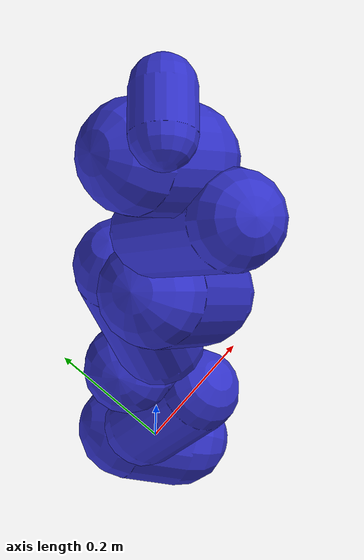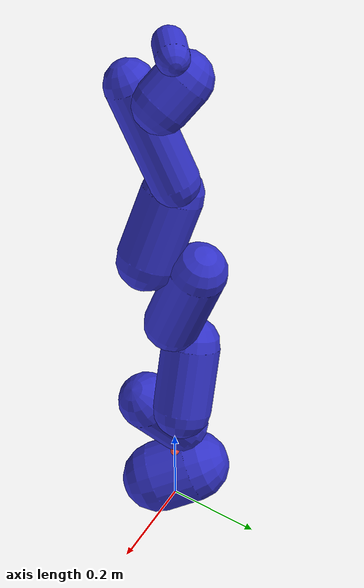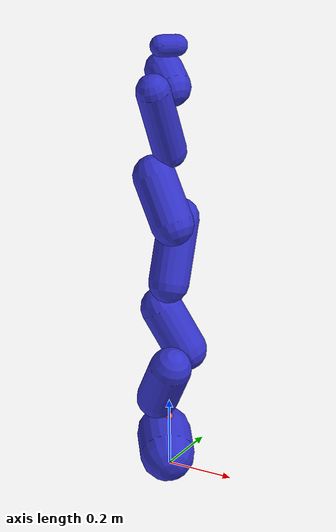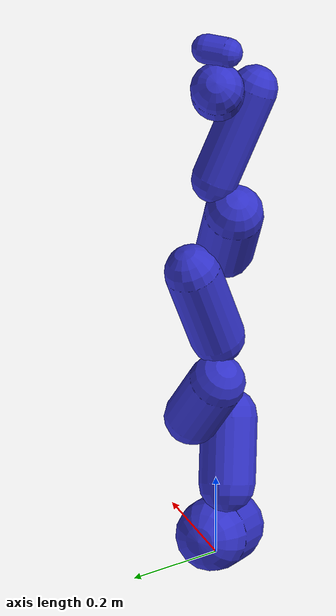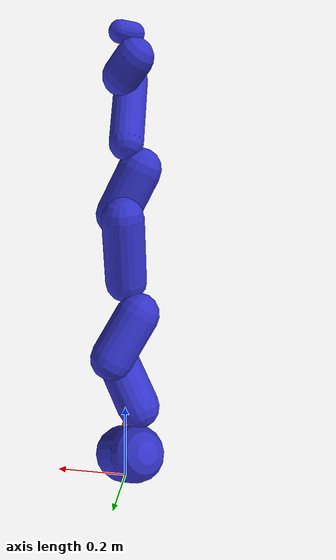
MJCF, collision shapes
<mujoco model="iiwa7">
  <compiler angle="radian"/>
  <actuator>
    <motor ctrllimited="true" ctrlrange="-176.0 176.0" joint="joint_1" name="torq_j1"/>
    <motor ctrllimited="true" ctrlrange="-176.0 176.0" joint="joint_2" name="torq_j2"/>
    <motor ctrllimited="true" ctrlrange="-110.0 110.0" joint="joint_3" name="torq_j3"/>
    <motor ctrllimited="true" ctrlrange="-110.0 110.0" joint="joint_4" name="torq_j4"/>
    <motor ctrllimited="true" ctrlrange="-110.0 110.0" joint="joint_5" name="torq_j5"/>
    <motor ctrllimited="true" ctrlrange="-40.0 40.0" joint="joint_6" name="torq_j6"/>
    <motor ctrllimited="true" ctrlrange="-40.0 40.0" joint="joint_7" name="torq_j7"/>
  </actuator>
  <asset>
    <mesh name="link_0" file="meshes/link_0.stl"/>
    <mesh name="link_1" file="meshes/link_1.stl"/>
    <mesh name="link_2" file="meshes/link_2.stl"/>
    <mesh name="link_3" file="meshes/link_3.stl"/>
    <mesh name="link_4" file="meshes/link_4.stl"/>
    <mesh name="link_5" file="meshes/link_5.stl"/>
    <mesh name="link_6" file="meshes/link_6.stl"/>
    <mesh name="link_7" file="meshes/link_7.stl"/>
    <mesh name="link_0_vis" file="meshes/link_0_vis.stl"/>
    <mesh name="link_1_vis" file="meshes/link_1_vis.stl"/>
    <mesh name="link_2_vis" file="meshes/link_2_vis.stl"/>
    <mesh name="link_3_vis" file="meshes/link_3_vis.stl"/>
    <mesh name="link_4_vis" file="meshes/link_4_vis.stl"/>
    <mesh name="link_5_vis" file="meshes/link_5_vis.stl"/>
    <mesh name="link_6_vis" file="meshes/link_6_vis.stl"/>
    <mesh name="link_7_vis" file="meshes/link_7_vis.stl"/>
  </asset>
  <worldbody>
    <body name="base" pos="0 0 0">
      <camera mode="fixed" name="robotview" pos="1.0 0 0.4" quat="0.653 0.271 0.271 0.653"/>
      <inertial diaginertia="0 0 0" mass="0" pos="0 0 0"/>
      <body name="fixed_base_link" pos="0 0 0">
        <geom type="mesh" pos="0 0 0" contype="0" conaffinity="0" group="1" rgba="0.4 0.4 0.4 1" name="link_0_visual" mesh="link_0_vis"/>
        <geom type="capsule" pos="-0.010520 -0.004486 0.063368" rgba="0.2 0.2 0.8 0.5" contype="0" name="link_0_collision" quat="0.559924 0.663001 0.496905 0.000000" size="0.079501 0.042908"/>
        <body name="link_1" pos="0 0 0.15">
          <site name="right_center" pos="0 0 0" size="0.01" rgba="1 0.3 0.3 1" group="2"/>
          <inertial pos="0 -0.03 0.12" quat="0.428904 0.562175 -0.562175 0.428904" mass="3.4525" diaginertia="0.0218946 0.02183 0.00663837"/>
          <joint name="joint_1" pos="0 0 0" axis="0 0 1" limited="true" range="-2.96706 2.96706" damping="0.1"/>
          <geom pos="0 0 0.0075" type="mesh" contype="0" conaffinity="0" group="1" rgba="0.4 0.4 0.4 1" name="link_1_visual" mesh="link_1_vis"/>
          <geom pos="-0.002046 -0.028049 0.114487" type="capsule" contype="0" rgba="0.2 0.2 0.8 0.5" name="link_1_collision" quat="0.958243 0.149873 0.243531 0.000000" size="0.061216 0.072161"/>
          <body name="link_2" pos="0 0 0.19" quat="0 0 0.707107 0.707107">
            <inertial pos="0.0003 0.059 0.042" quat="0.701371 0.0898824 0.0898824 0.701371" mass="3.4821" diaginertia="0.02179 0.0217049 0.00684512"/>
            <joint name="joint_2" pos="0 0 0" axis="0 0 1" limited="true" range="-2.0944 2.0944" damping="0.1"/>
            <geom type="mesh" contype="0" conaffinity="0" group="1" rgba="1 0.423529 0.0392157 1" name="link_2_visual" mesh="link_2_vis"/>
            <geom type="capsule" contype="0" rgba="0.2 0.2 0.8 0.5" name="link_2_collision" pos="0.001875 0.074216 0.028971" quat="0.756117 0.570673 -0.320344 0.000000" size="0.060906 0.071430"/>
            <body name="link_3" pos="0 0.21 0" quat="0 0 0.707107 0.707107">
              <inertial pos="0 0.03 0.13" quat="0.56292 0.427927 -0.427927 0.56292" mass="4.05623" diaginertia="0.0321488 0.03204 0.00799117"/>
              <joint name="joint_3" pos="0 0 0" axis="0 0 1" limited="true" range="-2.96706 2.96706" damping="0.1"/>
              <geom pos="0 0 -0.026" type="mesh" contype="0" conaffinity="0" group="1" rgba="0.4 0.4 0.4 1" name="link_3_visual" mesh="link_3_vis"/>
              <geom pos="-0.000003 0.026818 0.101911" type="capsule" contype="0" rgba="0.2 0.2 0.8 0.5" name="link_3_collision" quat="0.987171 -0.159663 -0.000418 0.000000" size="0.058469 0.092809"/>
              <body name="link_4" pos="0 0 0.19" quat="0.707107 0.707107 0 0">
                <inertial pos="0 0.067 0.034" quat="0.991887 -0.127124 0 0" mass="3.4822" diaginertia="0.02178 0.0216947 0.00684029"/>
                <joint name="joint_4" pos="0 0 0" axis="0 0 1" limited="true" range="-2.0944 2.0944" damping="0.1"/>
                <geom type="mesh" contype="0" conaffinity="0" group="1" rgba="1 0.423529 0.0392157 1" name="link_4_visual" mesh="link_4_vis"/>
                <geom type="capsule" contype="0" rgba="0.2 0.2 0.8 0.5" name="link_4_collision" pos="-0.001356 0.073448 0.029190" quat="0.665322 -0.659204 -0.350425 0.000000" size="0.061157 0.071151"/>
                <body name="link_5" pos="0 0.21 0" quat="0 0 0.707107 0.707107">
                  <inertial pos="0.0001 0.021 0.076" quat="0.365352 0.605407 -0.605407 0.365352" mass="2.1633" diaginertia="0.0131987 0.01287 0.0036293"/>
                  <joint name="joint_5" pos="0 0 0" axis="0 0 1" limited="true" range="-2.96706 2.96706" damping="0.1"/>
                  <geom pos="0 0 -0.026" type="mesh" contype="0" conaffinity="0" group="1" rgba="0.4 0.4 0.4 1" name="link_5_visual" mesh="link_5_vis"/>
                  <geom pos="-0.000141 0.040086 0.089159" type="capsule" contype="0" rgba="0.2 0.2 0.8 0.5" name="link_5_collision" quat="0.225219 0.974216 0.013405 0.000000" size="0.048054 0.102854"/>
                  <body name="link_6" pos="0 0.0607 0.19" quat="0.707107 0.707107 0 0">
                    <inertial pos="0 0.0006 0.0004" quat="0.996112 0.088097 0 0" mass="2.3466" diaginertia="0.006509 0.00631585 0.00447015"/>
                    <joint name="joint_6" pos="0 0 0" axis="0 0 1" limited="true" range="-2.0944 2.0944" damping="0.1"/>
                    <geom type="mesh" contype="0" conaffinity="0" group="1" mesh="link_6_vis" name="link_6_visual" rgba="1 0.423529 0.0392157 1"/>
                    <geom type="capsule" contype="0" rgba="0.2 0.2 0.8 0.5" name="link_6_collision" pos="0.003648 0.009051 0.061423" quat="0.553726 0.598985 -0.578450 0.000000" size="0.053533 0.029600"/>
                    <body name="link_7" pos="0 0.081 0.0607" quat="0 0 0.707107 0.707107">
                      <inertial pos="0 0 0.02" quat="0.923068 0 0 0.384636" mass="3.129" diaginertia="0.0152362 0.0140538 0.002872"/>
                      <joint name="joint_7" pos="0 0 0" axis="0 0 1" limited="true" range="-3.05433 3.05433" damping="0.1"/>
                      <geom pos="0 0 -0.0005" type="mesh" contype="0" conaffinity="0" group="1" rgba="0.4 0.4 0.4 1" mesh="link_7_vis" name="link_7_visual"/>
                      <geom pos="0.000000 -0.000003 0.018547" type="capsule" contype="0" rgba="0.2 0.2 0.8 0.5" name="link_7_collision" quat="0.706850 0.460909 -0.536588 0.000000" size="0.030356 0.021562"/>
                      <body name="right_hand" pos="0 0 0.044" quat="0 0 0 1">
                        <camera mode="fixed" name="eye_in_hand" pos="0.05 0 0" quat="0 0.707108 0.707108 0" fovy="75"/>
                      </body>
                    </body>
                  </body>
                </body>
              </body>
            </body>
          </body>
        </body>
      </body>
    </body>
  </worldbody>
</mujoco>
